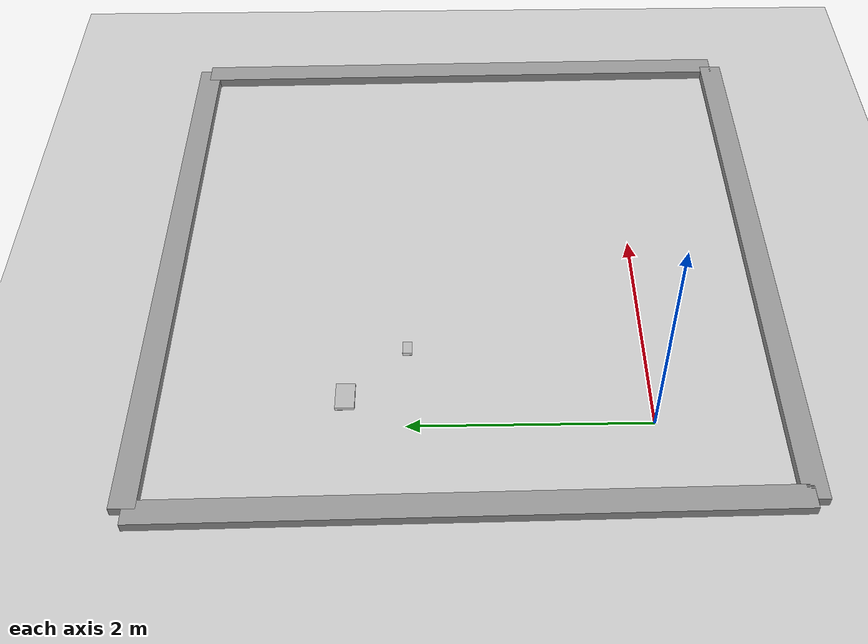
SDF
<sdf version="1.6">
 <world name="default">
  <light name="sun" type="directional">
   <pose>0 0 10 0 -0 0</pose>
   <diffuse>0.8 0.8 0.8 1</diffuse>
   <specular>0.1 0.1 0.1 1</specular>
   <attenuation>
    <range>1000</range>
    <constant>0.9</constant>
    <linear>0.01</linear>
    <quadratic>0.001</quadratic>
   </attenuation>
   <direction>-0.5 0.5 -1</direction>
  </light>
  <model name="ground_plane">
   <static>1</static>
   <link name="link">
    <collision name="collision">
     <geometry><plane><normal>0 0 1</normal><size>100 100</size></plane></geometry>
     <surface><friction><ode><mu>100</mu><mu2>50</mu2></ode></friction></surface>
    </collision>
    <visual name="visual">
     <cast_shadows>0</cast_shadows>
     <geometry><plane><normal>0 0 1</normal><size>100 100</size></plane></geometry>
     <material>
      <script><uri>file://media/materials/scripts/gazebo.material</uri><name>Gazebo/Grey</name></script>
     </material>
    </visual>
   </link>
  </model>
  <gravity>0 0 -9.8</gravity>
  <magnetic_field>6e-06 2.3e-05 -4.2e-05</magnetic_field>
  <atmosphere type="adiabatic"/>
  <physics name="default_physics" default="0" type="ode">
   <max_step_size>0.001</max_step_size>
   <real_time_factor>1</real_time_factor>
   <real_time_update_rate>1000</real_time_update_rate>
  </physics>
  <scene><ambient>0.4 0.4 0.4 1</ambient><background>0.7 0.7 0.7 1</background><shadows>1</shadows></scene>
  <spherical_coordinates>
   <surface_model>EARTH_WGS84</surface_model>
   <latitude_deg>0</latitude_deg>
   <longitude_deg>0</longitude_deg>
   <elevation>0</elevation>
   <heading_deg>0</heading_deg>
  </spherical_coordinates>
  <model name="wall1">
   <static>1</static>
   <link name="link">
    <pose>0 0 0.42 0 -0 0</pose>
    <collision name="collision"><geometry><box><size>5 0.2 0.084</size></box></geometry></collision>
    <visual name="visual">
     <cast_shadows>0</cast_shadows>
     <geometry><box><size>5 0.2 0.084</size></box></geometry>
     <material>
      <script>
       <uri>model://grey_wall/materials/scripts</uri>
       <uri>model://grey_wall/materials/textures</uri>
       <name>vrc/grey_wall</name>
      </script>
     </material>
    </visual>
   </link>
   <pose>-1 1.5 0 0 -0 -1.55905</pose>
  </model>
  <model name="wall2">
   <static>1</static>
   <link name="link">
    <pose>0 0 0.42 0 -0 0</pose>
    <collision name="collision"><geometry><box><size>5 0.2 0.084</size></box></geometry></collision>
    <visual name="visual">
     <cast_shadows>0</cast_shadows>
     <geometry><box><size>5 0.2 0.084</size></box></geometry>
     <material>
      <script>
       <uri>model://grey_wall/materials/scripts</uri>
       <uri>model://grey_wall/materials/textures</uri>
       <name>vrc/grey_wall</name>
      </script>
     </material>
    </visual>
   </link>
   <pose>1.5 4.0 0 0 -0 0</pose>
  </model>
  <model name="wall3">
   <static>1</static>
   <link name="link">
    <pose>0 0 0.42 0 -0 0</pose>
    <collision name="collision"><geometry><box><size>5 0.2 0.084</size></box></geometry></collision>
    <visual name="visual">
     <cast_shadows>0</cast_shadows>
     <geometry><box><size>5 0.2 0.084</size></box></geometry>
     <material>
      <script>
       <uri>model://grey_wall/materials/scripts</uri>
       <uri>model://grey_wall/materials/textures</uri>
       <name>vrc/grey_wall</name>
      </script>
     </material>
    </visual>
   </link>
   <pose>4.0 1.5 0 0 -0 -1.55905</pose>
  </model>
  <model name="wall4">
   <static>1</static>
   <link name="link">
    <pose>0 0 0.42 0 -0 0</pose>
    <collision name="collision"><geometry><box><size>5 0.2 0.084</size></box></geometry></collision>
    <visual name="visual">
     <cast_shadows>0</cast_shadows>
     <geometry><box><size>5 0.2 0.084</size></box></geometry>
     <material>
      <script>
       <uri>model://grey_wall/materials/scripts</uri>
       <uri>model://grey_wall/materials/textures</uri>
       <name>vrc/grey_wall</name>
      </script>
     </material>
    </visual>
   </link>
   <pose>1.5 -1 0 0 -0 0</pose>
  </model>
  <model name="book_1">
   <link name="cover">
    <pose>0 -0.000108 0.015405 0 -0 0</pose>
    <visual name="visual">
     <geometry><box><size>0.1225 0.08 0.03</size></box></geometry>
     <material>
      <script>
       <uri>model://book_1/materials/scripts/book_1.material</uri>
       <uri>model://book_1/materials/textures/cover1.jpg</uri>
       <name>book_1</name>
      </script>
     </material>
    </visual>
    <collision name="collision">
     <geometry><box><size>0.1225 0.08 0.03</size></box></geometry>
     <surface><contact>/n</contact><friction><ode><mu>1000</mu><mu2>1000</mu2></ode></friction></surface>
    </collision>
    <inertial>
     <inertia><ixx>0.00058</ixx><ixy>0</ixy><ixz>0</ixz><iyy>0.00058</iyy><iyz>0</iyz><izz>0.00019</izz></inertia>
     <mass>0.05</mass>
    </inertial>
   </link>
   <link name="page">
    <pose>0 0.000608 0.015405 0 -0 0</pose>
    <visual name="visual">
     <geometry><box><size>0.12251 0.07931 0.028</size></box></geometry>
     <material>
      <lighting>1</lighting>
      <ambient>1 1 1 1</ambient>
      <diffuse>1 1 1 1</diffuse>
      <specular>0.01 0.01 0.01 1</specular>
      <emissive>0 0 0 1</emissive>
      <shader type="vertex"><normal_map>__default__</normal_map></shader>
     </material>
    </visual>
    <collision name="collision">
     <geometry><box><size>0.1225 0.08 0.03</size></box></geometry>
     <surface><contact>/n</contact><friction><ode><mu>1000</mu><mu2>1000</mu2></ode></friction></surface>
    </collision>
    <inertial>
     <inertia><ixx>0.00058</ixx><ixy>0</ixy><ixz>0</ixz><iyy>0.00058</iyy><iyz>0</iyz><izz>0.00019</izz></inertia>
     <mass>0.05</mass>
    </inertial>
   </link>
   <static>0</static>
   <pose>0.787425449793 2.0 -0.000405 -1e-06 1e-06 0</pose>
  </model>
  <model name="book_2">
   <link name="cover">
    <pose>0 -0.000108 0.015405 0 -0 0</pose>
    <visual name="visual">
     <geometry><box><size>0.245 0.16 0.03</size></box></geometry>
     <material>
      <script>
       <uri>model://book_1/materials/scripts/book_2.material</uri>
       <uri>model://book_1/materials/textures/cover2.jpg</uri>
       <name>book_2</name>
      </script>
     </material>
    </visual>
    <collision name="collision">
     <geometry><box><size>0.245 0.16 0.03</size></box></geometry>
     <surface><contact>/n</contact><friction><ode><mu>1000</mu><mu2>1000</mu2></ode></friction></surface>
    </collision>
    <inertial>
     <inertia><ixx>0.00058</ixx><ixy>0</ixy><ixz>0</ixz><iyy>0.00058</iyy><iyz>0</iyz><izz>0.00019</izz></inertia>
     <mass>0.05</mass>
    </inertial>
   </link>
   <link name="page">
    <pose>0 0.000608 0.015405 0 -0 0</pose>
    <visual name="visual">
     <geometry><box><size>0.24502 0.15862 0.028</size></box></geometry>
     <material>
      <lighting>1</lighting>
      <ambient>1 1 1 1</ambient>
      <diffuse>1 1 1 1</diffuse>
      <specular>0.01 0.01 0.01 1</specular>
      <emissive>0 0 0 1</emissive>
      <shader type="vertex"><normal_map>__default__</normal_map></shader>
     </material>
    </visual>
    <collision name="collision">
     <geometry><box><size>0.245 0.16 0.03</size></box></geometry>
     <surface><contact>/n</contact><friction><ode><mu>1000</mu><mu2>1000</mu2></ode></friction></surface>
    </collision>
    <inertial>
     <inertia><ixx>0.00058</ixx><ixy>0</ixy><ixz>0</ixz><iyy>0.00058</iyy><iyz>0</iyz><izz>0.00019</izz></inertia>
     <mass>0.05</mass>
    </inertial>
   </link>
   <static>0</static>
   <pose>0.29273177989 2.5 -0.000405 -1e-06 1e-06 0</pose>
  </model>
 </world>
</sdf>
